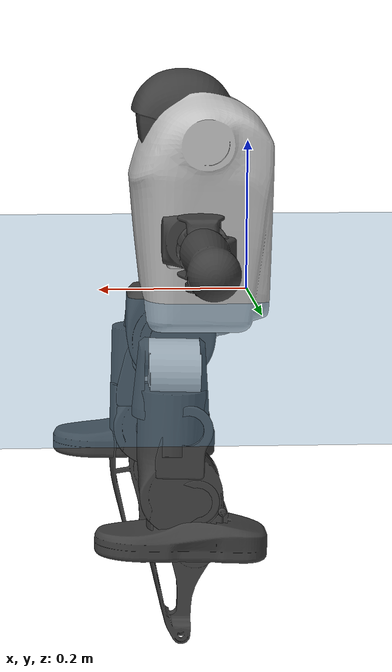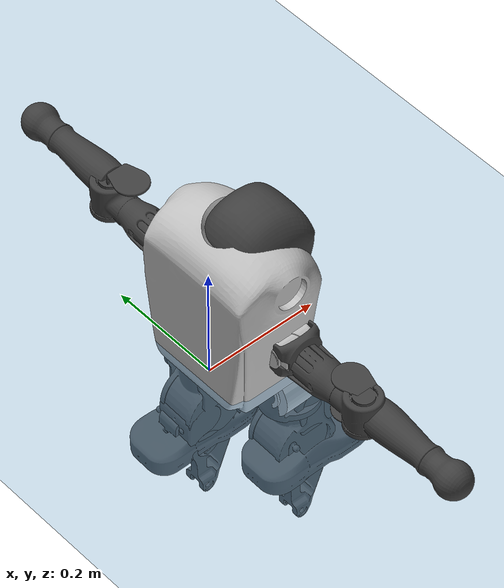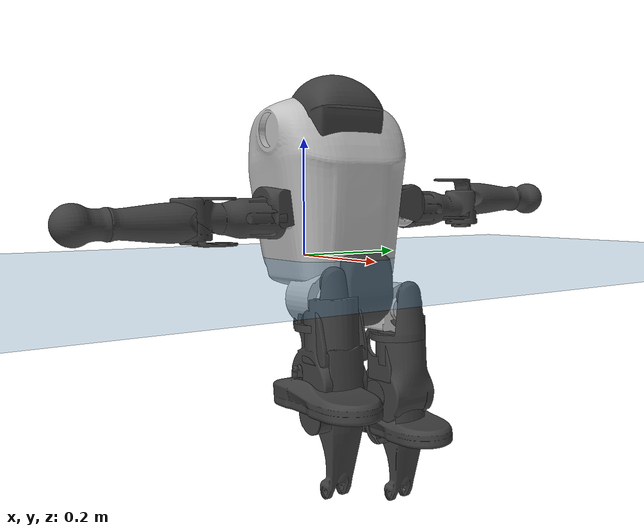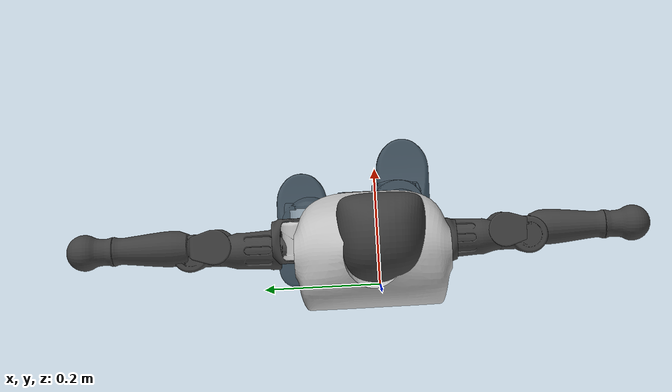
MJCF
<mujoco model="T1">
  <compiler angle="radian" assetdir="assets" balanceinertia="true" inertiafromgeom="false"/>

  <option timestep="0.005" density="1.2" viscosity="2e-05"/>

  <size nkey="1"/>

  <visual>
    <quality shadowsize="8192"/>
    <map shadowclip="0.5"/>
  </visual>

  <default>
    <default class="/">
      <joint armature="0.01" damping="0.01" frictionloss="0.1"/>
      <geom contype="0" conaffinity="0" group="1" solref="-1000 -80"/>
      <site size="0.01 0.005 0.005" group="5"/>
      <general forcelimited="true" biastype="affine" gainprm="25" biasprm="0 -25 -0.6"/>
      <default class="t1">
        <geom rgba="0.25 0.25 0.25 1"/>
        <default class="visual">
          <geom type="mesh" group="2"/>
        </default>
        <default class="collision">
          <geom group="3"/>
        </default>
        <default class="foot">
          <geom size="0.1115 0.05 0.015" type="box" condim="6" group="4" priority="1" solimp="0.015 1 0.015"/>
        </default>
        <default class="reward_collision_sphere">
          <geom group="5" rgba="1 0 0 1"/>
        </default>
      </default>
    </default>
  </default>

  <asset>
    <texture type="skybox" colorspace="auto" name="//unnamed_texture_0" builtin="gradient" rgb1="0.95 0.95 0.95" rgb2="0.95 0.95 0.95" width="100" height="600"/>
    <texture type="2d" colorspace="auto" name="texplane" builtin="checker" rgb1="0.345 0.575 0.748" rgb2="0.345 0.575 0.748" markrgb="1 1 1" width="512" height="512"/>
    <material name="MatPlane" class="/" texture="texplane" texuniform="true" texrepeat="2 2" specular="0.9"/>
    <mesh name="Trunk" class="/" file="Trunk.stl"/>
    <mesh name="H1" class="/" file="H1.stl"/>
    <mesh name="H2" class="/" file="H2.stl"/>
    <mesh name="AL1" class="/" file="AL1.stl"/>
    <mesh name="AL2" class="/" file="AL2.stl"/>
    <mesh name="AL3" class="/" file="AL3.stl"/>
    <mesh name="left_hand_link" class="/" file="left_hand_link.stl"/>
    <mesh name="AR1" class="/" file="AR1.stl"/>
    <mesh name="AR2" class="/" file="AR2.stl"/>
    <mesh name="AR3" class="/" file="AR3.stl"/>
    <mesh name="right_hand_link" class="/" file="right_hand_link.stl"/>
    <mesh name="Waist" class="/" file="Waist.stl"/>
    <mesh name="Hip_Pitch_Left" class="/" file="Hip_Pitch_Left.stl"/>
    <mesh name="Hip_Roll_Left" class="/" file="Hip_Roll_Left.stl"/>
    <mesh name="Hip_Yaw_Left" class="/" file="Hip_Yaw_Left.stl"/>
    <mesh name="Shank_Left" class="/" file="Shank_Left.stl"/>
    <mesh name="Ankle_Cross_Left" class="/" file="Ankle_Cross_Left.stl"/>
    <mesh name="left_foot_link" class="/" file="left_foot_link.stl"/>
    <mesh name="Hip_Pitch_Right" class="/" file="Hip_Pitch_Right.stl"/>
    <mesh name="Hip_Roll_Right" class="/" file="Hip_Roll_Right.stl"/>
    <mesh name="Hip_Yaw_Right" class="/" file="Hip_Yaw_Right.stl"/>
    <mesh name="Shank_Right" class="/" file="Shank_Right.stl"/>
    <mesh name="Ankle_Cross_Right" class="/" file="Ankle_Cross_Right.stl"/>
    <mesh name="right_foot_link" class="/" file="right_foot_link.stl"/>
  </asset>

  <worldbody>
    <geom name="floor" class="/" size="100 100 0.125" type="plane" group="0" material="MatPlane"/>
    <light name="toplight_shadow" class="/" pos="0 0 5" dir="0.0990148 0.0990148 -0.990148" type="directional" ambient="0.04 0.04 0.04" diffuse="0.55 0.55 0.55" specular="0.12 0.12 0.12"/>
    <light name="toplight_fill" class="/" pos="0 0 5" dir="0.0990148 0.0990148 -0.990148" type="directional" castshadow="false" ambient="0.04 0.04 0.04" diffuse="0.3 0.3 0.3" specular="0.08 0.08 0.08"/>
    <body name="trunk" childclass="t1" pos="0.00765121 0.0136209 -0.011913" quat="0.999975 0.00479508 -0.00507659 0.000801001">
      <inertial pos="0.0703882 -0.0066769 0.0331559" quat="0.99996 2.95749e-06 -0.00899689 -7.82912e-06" mass="5.67785" diaginertia="0.230337 0.0138796 0.000307595"/>
      <joint name="//unnamed_joint_0" type="free" armature="0" damping="0" frictionloss="0"/>
      <geom name="//unnamed_geom_1" class="visual" rgba="0.76 0.76 0.76 1" mesh="Trunk"/>
      <geom name="//unnamed_geom_2" class="collision" size="0.0598035 0.079738 0.119607" pos="0.0770252 0 0.0462588" type="box"/>
      <geom name="//unnamed_geom_3" class="reward_collision_sphere" size="0.0916987" pos="0.0770252 0 0.038549"/>
      <geom name="//unnamed_geom_4" class="reward_collision_sphere" size="0.0119607" pos="0.0770252 0.0614461 0"/>
      <geom name="//unnamed_geom_5" class="reward_collision_sphere" size="0.0119607" pos="0.0770252 -0.0614461 0"/>
      <geom name="//unnamed_geom_6" class="reward_collision_sphere" size="0.0119607" pos="0.0770252 0.0773498 0.0693882"/>
      <geom name="//unnamed_geom_7" class="reward_collision_sphere" size="0.0119607" pos="0.0770252 -0.0773498 0.0693882"/>
      <site name="imu" pos="-0.0595737 0.0303171 -0.0290781" size="0.0079738"/>
      <camera name="track" pos="0 -1.44579 0" quat="0.707107 0.707107 0 0" mode="trackcom"/>
      <camera name="ego_camera" pos="0.156618 0 0.161906" quat="-0.5 -0.5 0.5 0.5"/>
      <body name="H1" pos="0.0661684 -0.0141948 0.105441" quat="1 0.000251 0.000123515 -0.000114155">
        <inertial pos="0.01188 -0.0089957 0.0101136" quat="0.750529 0.0183007 0.0773732 0.656038" mass="0.265902" diaginertia="0.000900401 4.25971e-05 1.44079e-06"/>
        <joint name="AAHead_yaw" pos="0 0 0" axis="-0.0105975 -0.0219021 0.999704" range="-1.40713 1.82096" armature="0.0135261" damping="0.0245772" frictionloss="0.0129222"/>
        <geom name="//unnamed_geom_8" class="visual" mesh="H1"/>
        <body name="H2" pos="0.0023965 0.000272541 0.0133777" quat="1 1.3453e-07 -1.00515e-06 -7.89243e-07">
          <inertial pos="0.00452547 0.00142696 0.0375712" quat="0.986528 0.134784 -0.047302 -0.079744" mass="0.388252" diaginertia="0.00921585 0.000400919 1.39533e-05"/>
          <joint name="Head_pitch" pos="0 0 0" axis="0.0037451 -0.999809 0.0191992" range="-1.17408 0.294431" armature="0.0146388" damping="0.00588582" frictionloss="0.103128"/>
          <geom name="//unnamed_geom_9" class="visual" mesh="H2"/>
          <geom name="//unnamed_geom_10" class="collision" size="0.0637904" pos="0.0128375 0 0.0424039"/>
          <geom name="//unnamed_geom_11" class="reward_collision_sphere" size="0.0717642" pos="0.0256751 0 0.038549"/>
        </body>
      </body>
      <body name="AL1" pos="0.0778039 0.0725408 0.0898665" quat="1 -1.27257e-05 0.000516786 -4.89554e-05">
        <inertial pos="0.00852919 0.0321013 -0.00549339" quat="0.525106 0.427718 -0.542206 0.497326" mass="0.28875" diaginertia="0.00479108 0.000230127 2.10959e-06"/>
        <joint name="Left_Shoulder_Pitch" pos="0 0 0" axis="0.00880421 0.998751 -0.0491785" stiffness="0.00752749" range="-3.32542 1.06091" armature="0.00812937" damping="0.00355369" frictionloss="0.0960436"/>
        <geom name="//unnamed_geom_12" class="visual" rgba="0.76 0.76 0.76 1" mesh="AL1"/>
        <body name="AL2" pos="0.00082532 0.0341068 0.00859816" quat="1 0.000264366 -5.56081e-05 -2.40608e-05">
          <inertial pos="0.00440669 0.0371839 0.00211758" quat="0.490973 0.510806 -0.487219 0.510529" mass="0.0857594" diaginertia="0.00151265 6.88056e-05 1.69913e-06"/>
          <joint name="Left_Shoulder_Roll" pos="0 0 0" axis="-0.999798 0.00688851 0.0188664" stiffness="0.0178255" range="-1.40774 1.53584" armature="0.0073357" damping="0.0187284" frictionloss="0.0929345"/>
          <geom name="//unnamed_geom_13" class="visual" mesh="AL2"/>
          <body name="AL3" pos="-0.0129775 0.0441749 -0.00913197" quat="0.999982 0.00251626 0.00420186 -0.00355338">
            <inertial pos="0.0153698 0.0594262 -0.000703861" quat="0.697532 0.716346 -0.0141123 -0.00991114" mass="0.437633" diaginertia="0.0394014 0.00296023 5.07301e-06"/>
            <joint name="Left_Elbow_Pitch" pos="0 0 0" axis="-0.00266286 -0.99992 -0.0123561" stiffness="0.0171506" range="-2.26607 2.24902" armature="0.011636" damping="0.00797653" frictionloss="0.0977624"/>
            <geom name="//unnamed_geom_14" class="visual" mesh="AL3"/>
            <geom name="//unnamed_geom_15" class="collision" size="0.0239214 0.0598035" pos="0 0.0361448 0" quat="0.707105 0.707108 0 0" type="cylinder"/>
            <geom name="//unnamed_geom_16" class="reward_collision_sphere" size="0.0287057"/>
            <body name="left_hand_link" pos="0.00933661 0.105788 0.0165525" quat="0.999974 -0.00707305 0.000684821 0.00102095">
              <inertial pos="0.000680308 0.0901516 -0.0109633" quat="0.703446 0.709185 0.0418227 0.0216956" mass="0.210161" diaginertia="0.0282051 0.00194666 2.53997e-06"/>
              <joint name="Left_Elbow_Yaw" pos="0 0 0" axis="-0.00138201 0.0191274 0.999816" range="-2.36192 0.14866" armature="0.00922731" damping="0" frictionloss="0.0819385"/>
              <geom name="//unnamed_geom_17" class="visual" mesh="left_hand_link"/>
              <geom name="//unnamed_geom_18" class="collision" size="0.0239214 0.0697707" pos="0 0.0939764 0" quat="0.707105 0.707108 0 0" type="cylinder"/>
              <geom name="//unnamed_geom_19" class="reward_collision_sphere" size="0.039869"/>
              <geom name="//unnamed_geom_20" class="reward_collision_sphere" size="0.0279083" pos="0 0.0795185 0"/>
              <geom name="//unnamed_geom_21" class="reward_collision_sphere" size="0.0279083" pos="0 0.155423 0"/>
            </body>
          </body>
        </body>
      </body>
      <body name="AR1" pos="0.0641236 -0.0613117 0.0934874" quat="0.999997 -0.00061679 0.00242654 -0.000691086">
        <inertial pos="-0.00168004 -0.0191048 -0.0152828" quat="0.499374 0.506045 -0.512205 0.481862" mass="0.298266" diaginertia="0.0053673 0.000340422 2.77616e-06"/>
        <joint name="Right_Shoulder_Pitch" pos="0 0 0" axis="0.012312 -0.997281 0.0726616" stiffness="0.00144232" range="-1.47231 3.35078" armature="0.00515152" damping="0" frictionloss="0.0303138"/>
        <geom name="//unnamed_geom_22" class="visual" rgba="0.76 0.76 0.76 1" mesh="AR1"/>
        <body name="AR2" pos="0.00129862 -0.024418 0.00126933" quat="0.999988 -0.0025455 0.00259023 0.00340942">
          <inertial pos="0.0148755 -0.0279179 0.0102042" quat="0.535574 0.449997 -0.512191 0.498321" mass="0.0602942" diaginertia="0.00110113 5.5033e-05 1.43515e-06"/>
          <joint name="Right_Shoulder_Roll" pos="0 0 0" axis="-0.998979 -0.0439252 -0.010543" stiffness="0.0322097" range="-1.75094 1.60244" armature="0.0132451" damping="0.00648715" frictionloss="0.0948742"/>
          <geom name="//unnamed_geom_23" class="visual" mesh="AR2"/>
          <body name="AR3" pos="0.00356266 -0.0301782 -0.0143975" quat="0.999979 0.00154539 -0.00371342 -0.00502953">
            <inertial pos="-0.0166083 -0.0641439 -0.0139004" quat="0.708304 0.705907 0.000293829 -0.000861254" mass="0.59158" diaginertia="0.0607904 0.00291456 6.58534e-06"/>
            <joint name="Right_Elbow_Pitch" pos="0 0 0" axis="-0.00129495 0.999999 0.000526186" stiffness="0.0441485" range="-2.17437 2.28022" armature="0.00853114" damping="0.0123279" frictionloss="0.0129949"/>
            <geom name="//unnamed_geom_24" class="visual" mesh="AR3"/>
            <geom name="//unnamed_geom_25" class="collision" size="0.0239214 0.0598035" pos="0 -0.0361448 0" quat="0.707105 0.707108 0 0" type="cylinder"/>
            <geom name="//unnamed_geom_26" class="reward_collision_sphere" size="0.0287057"/>
            <body name="right_hand_link" pos="0.0104103 -0.10809 -0.00400589" quat="1 -0.000141945 0.000178334 7.61253e-05">
              <inertial pos="0.00301359 -0.0852734 0.0053578" quat="0.706261 0.70793 -0.00515739 0.00223866" mass="0.154405" diaginertia="0.0227592 0.0012773 1.62696e-06"/>
              <joint name="Right_Elbow_Yaw" pos="0 0 0" axis="-0.0375127 0.0708246 0.996783" stiffness="0.00282058" range="0.126669 2.42902" armature="0.0117332" damping="0.0101743" frictionloss="0.0410668"/>
              <geom name="//unnamed_geom_27" class="visual" mesh="right_hand_link"/>
              <geom name="//unnamed_geom_28" class="collision" size="0.0239214 0.0697707" pos="0 -0.0939764 0" quat="0.707105 0.707108 0 0" type="cylinder"/>
              <geom name="//unnamed_geom_29" class="reward_collision_sphere" size="0.039869"/>
              <geom name="//unnamed_geom_30" class="reward_collision_sphere" size="0.0279083" pos="0 -0.0795185 0"/>
              <geom name="//unnamed_geom_31" class="reward_collision_sphere" size="0.0279083" pos="0 -0.155423 0"/>
            </body>
          </body>
        </body>
      </body>
      <body name="Waist" pos="0.0970009 0.00826004 -0.0474165" quat="0.99997 0.00342388 -0.00641023 -0.00254776">
        <inertial pos="0.0176922 -0.0119379 0.0144094" quat="0.988398 0.0537236 -0.136817 0.0382604" mass="1.66327" diaginertia="0.0200357 0.00121736 4.64754e-05"/>
        <joint name="Waist" pos="0 0 0" axis="0.0430248 0.0298371 0.998628" range="-1.55326 1.45905" armature="0.00792951" damping="0" frictionloss="0.0786047"/>
        <geom name="//unnamed_geom_32" class="visual" mesh="Waist"/>
        <body name="Hip_Pitch_Left" pos="-0.000147073 0.088735 -0.0135255" quat="0.999996 -0.000810196 -0.00120312 -0.00232206">
          <inertial pos="-0.0139428 -0.007093 -0.00706514" quat="0.965679 0.255597 -0.0461712 -0.00139458" mass="0.437584" diaginertia="0.00649347 0.000213008 1.00583e-05"/>
          <joint name="Left_Hip_Pitch" pos="0 0 0" axis="-0.0367938 0.998096 0.0495078" range="-1.95694 1.66667" armature="0.00412662" damping="0.00302493" frictionloss="0.0720932"/>
          <geom name="//unnamed_geom_33" class="visual" rgba="0.76 0.76 0.76 1" mesh="Hip_Pitch_Left"/>
          <body name="Hip_Roll_Left" pos="0.00542909 0.00857462 0.00131832" quat="1 3.21717e-05 2.6924e-05 7.93829e-06">
            <inertial pos="0.00245314 0.016084 -0.0126825" quat="0.708301 -0.00558459 -0.00747254 0.705849" mass="0.22336" diaginertia="0.00817959 0.000410092 3.98453e-06"/>
            <joint name="Left_Hip_Roll" pos="0 0 0" axis="-0.99908 0.00282832 0.0427924" range="-1.47296 0.0161629" armature="0.00594974" damping="0.0844516" frictionloss="0.0309007"/>
            <geom name="//unnamed_geom_34" class="visual" mesh="Hip_Roll_Left"/>
            <geom name="//unnamed_geom_35" class="reward_collision_sphere" size="0.0438559"/>
            <body name="Hip_Yaw_Left" pos="-0.00411435 0.00887053 -0.0395394" quat="0.999987 0.00321145 -0.00201396 -0.00329923">
              <inertial pos="-0.0139586 -0.00608298 -0.0228484" quat="0.706953 -0.0227715 -0.00254322 0.70689" mass="1.03016" diaginertia="0.1016 0.00594658 2.60079e-05"/>
              <joint name="Left_Hip_Yaw" pos="0 0 0" axis="-0.000668324 0.00275525 -0.999996" stiffness="0.0705174" range="-0.682415 1.07756" armature="0.008314" damping="0.00791002" frictionloss="0.0794838"/>
              <geom name="//unnamed_geom_36" class="visual" mesh="Hip_Yaw_Left"/>
              <geom name="//unnamed_geom_37" class="collision" size="0.039869 0.0637904" type="cylinder"/>
              <body name="Shank_Left" pos="-0.0204874 -0.000389452 -0.0470817" quat="1 -5.54102e-05 -0.000306494 3.32256e-05">
                <inertial pos="0.00454518 0.000486178 -0.0511957" quat="0.998547 -0.0247767 0.0133953 0.0459343" mass="0.830682" diaginertia="0.0976876 0.00765998 1.71609e-05"/>
                <joint name="Left_Knee_Pitch" pos="0 0 0" axis="0.0152974 0.999175 0.0376158" stiffness="0.00199494" range="-0.0179642 2.55314" armature="0.00291725" damping="0.0655369" frictionloss="0.0876907"/>
                <geom name="//unnamed_geom_38" class="visual" mesh="Shank_Left"/>
                <geom name="//unnamed_geom_39" class="collision" size="0.039869 0.0598035" pos="0 0 -0.0462588" type="cylinder"/>
                <geom name="//unnamed_geom_40" class="reward_collision_sphere" size="0.0518297"/>
                <body name="Ankle_Cross_Left" pos="-0.0125146 -0.000829006 -0.124924" quat="0.999989 0.00344874 -0.000487621 -0.00326301">
                  <inertial pos="0.0120257 -0.00439181 -0.0127796" quat="0.441472 0.556254 0.545863 0.444655" mass="0.0352879" diaginertia="0.000113325 5.08634e-06 8.69905e-08"/>
                  <joint name="Left_Ankle_Pitch" pos="0 0 0" axis="0.000936501 0.999999 0.00104802" stiffness="0.0641048" range="-0.878442 0.36046" armature="0.00112337" damping="0" frictionloss="0.0719511"/>
                  <geom name="//unnamed_geom_41" class="visual" mesh="Ankle_Cross_Left"/>
                  <body name="left_foot_link" pos="0.00678375 0.0112675 -0.0160658" quat="0.999964 0.00499283 3.20113e-05 0.00680858">
                    <inertial pos="0.0118937 0.00950308 0.000220197" quat="0.00892272 0.642628 -0.0652896 0.763339" mass="0.273509" diaginertia="0.00839651 0.000443213 1.37353e-05"/>
                    <joint name="Left_Ankle_Roll" pos="0 0 0" axis="-0.996591 -0.0561687 -0.060435" stiffness="0.000278648" range="-0.573766 0.224713" armature="0.00835913" damping="0.0659578" frictionloss="0.101114"/>
                    <geom name="//unnamed_geom_42" class="visual" mesh="left_foot_link"/>
                    <geom name="left_foot" class="foot" size="0.0576564 0.0572251 0.0119934" pos="0.0128375 0 -0.00578235"/>
                    <geom name="//unnamed_geom_44" class="reward_collision_sphere" size="0.0414637" pos="0.0128375 0 -0.00578235"/>
                    <geom name="//unnamed_geom_45" class="reward_collision_sphere" size="0.0239214" pos="0.121957 -0.0166266 -0.00578235"/>
                    <geom name="//unnamed_geom_46" class="reward_collision_sphere" size="0.0239214" pos="-0.0898628 -0.0166266 -0.00578235"/>
                    <site name="left_foot" class="foot" pos="0.0128375 0 -0.00578235" size="0.0079738"/>
                  </body>
                </body>
              </body>
            </body>
          </body>
        </body>
        <body name="Hip_Pitch_Right" pos="0.00515978 -0.0667627 0.0162714" quat="0.999999 0.000590247 0.00138369 0.000115199">
          <inertial pos="0.016029 0.0194685 -2.84591e-05" quat="0.970235 -0.24078 -0.00220807 -0.0257858" mass="0.509111" diaginertia="0.00528984 0.00024683 1.06436e-05"/>
          <joint name="Right_Hip_Pitch" pos="0 0 0" axis="-0.0096851 -0.999615 0.0259887" stiffness="0.0360402" range="-1.46025 2.01549" armature="0.0109596" damping="0.0789745" frictionloss="0.0487238"/>
          <geom name="//unnamed_geom_47" class="visual" rgba="0.76 0.76 0.76 1" mesh="Hip_Pitch_Right"/>
          <body name="Hip_Roll_Right" pos="0.0107526 -6.85962e-05 0.00847776" quat="0.999987 -0.00283688 -0.00359415 -0.00221065">
            <inertial pos="0.0128502 -0.00711368 -0.0320778" quat="0.692441 0.0569495 0.00917609 0.719165" mass="0.184317" diaginertia="0.00514483 0.000338679 4.68634e-06"/>
            <joint name="Right_Hip_Roll" pos="0 0 0" axis="-0.999595 0.0254133 -0.0127957" stiffness="0.0108444" range="-0.117177 1.52407" armature="0.00927101" damping="0" frictionloss="0.0348549"/>
            <geom name="//unnamed_geom_48" class="visual" mesh="Hip_Roll_Right"/>
            <geom name="//unnamed_geom_49" class="reward_collision_sphere" size="0.0438559"/>
            <body name="Hip_Yaw_Right" pos="0.0159604 0.00276254 -0.0244167" quat="1 -0.00041239 0.000224843 0.000513731">
              <inertial pos="-0.00539141 0.00549744 -0.0447221" quat="0.714277 -0.0260009 -0.0307035 0.698706" mass="1.16856" diaginertia="0.0746348 0.00555825 1.82055e-05"/>
              <joint name="Right_Hip_Yaw" pos="0 0 0" axis="-0.0134241 0.00527508 -0.999896" stiffness="0.0268533" range="-0.997185 0.993894" armature="0.00638524" damping="0" frictionloss="0.107539"/>
              <geom name="//unnamed_geom_50" class="visual" mesh="Hip_Yaw_Right"/>
              <geom name="//unnamed_geom_51" class="collision" size="0.039869 0.0637904" type="cylinder"/>
              <body name="Shank_Right" pos="-0.00441795 0.00197006 -0.0401054" quat="0.999994 0.00222843 0.00274572 0.000483498">
                <inertial pos="-0.00861727 0.0130306 -0.04766" quat="0.998277 -0.0249114 0.029312 -0.0442988" mass="0.768424" diaginertia="0.136671 0.00703736 2.01113e-05"/>
                <joint name="Right_Knee_Pitch" pos="0 0 0" axis="-0.00650286 -0.999972 -0.00361195" range="-2.05058 -0.0310575" armature="0.0102091" damping="0.00698154" frictionloss="0.0948012"/>
                <geom name="//unnamed_geom_52" class="visual" mesh="Shank_Right"/>
                <geom name="//unnamed_geom_53" class="collision" size="0.039869 0.0598035" pos="0 0 -0.0462588" type="cylinder"/>
                <geom name="//unnamed_geom_54" class="reward_collision_sphere" size="0.0518297"/>
                <body name="Ankle_Cross_Right" pos="0.00510657 -0.00526417 -0.100231" quat="1 -2.70301e-05 6.82271e-06 -0.000167242">
                  <inertial pos="-0.00455016 -0.00924384 -0.00421745" quat="0.444416 0.54988 0.548782 0.446055" mass="0.0408903" diaginertia="8.11862e-05 5.61799e-06 7.75456e-08"/>
                  <joint name="Right_Ankle_Pitch" pos="0 0 0" axis="-0.042772 -0.997529 0.055727" stiffness="0.0630024" range="-0.558386 1.11172" armature="0.00787489" damping="0" frictionloss="0.0798351"/>
                  <geom name="//unnamed_geom_55" class="visual" mesh="Ankle_Cross_Right"/>
                  <body name="right_foot_link" pos="-0.000106728 -0.0134351 -0.00882773" quat="1 -6.80757e-05 0.000214681 0.000224505">
                    <inertial pos="-0.000677104 -0.0134491 0.0127622" quat="0.0459922 0.624493 -0.0489847 0.778135" mass="0.465302" diaginertia="0.0109286 0.000570666 2.69615e-05"/>
                    <joint name="Right_Ankle_Roll" pos="0 0 0" axis="-0.999358 0.035381 0.00561218" range="-0.184044 0.138477" armature="0.0143581" damping="0.0883119" frictionloss="0.0337345"/>
                    <geom name="//unnamed_geom_56" class="visual" mesh="right_foot_link"/>
                    <geom name="right_foot" class="foot" size="0.0768834 0.059262 0.00587572" pos="0.0128375 0 -0.00578235"/>
                    <geom name="//unnamed_geom_58" class="reward_collision_sphere" size="0.0318952"/>
                    <geom name="//unnamed_geom_59" class="reward_collision_sphere" size="0.0239214" pos="0.0128375 0 -0.00578235"/>
                    <geom name="//unnamed_geom_60" class="reward_collision_sphere" size="0.0239214" pos="0.121957 0.0166266 -0.00578235"/>
                    <geom name="//unnamed_geom_61" class="reward_collision_sphere" size="0.0239214" pos="-0.0898628 0.0166266 -0.00578235"/>
                    <site name="right_foot" class="foot" pos="0.0128375 0 -0.00578235" size="0.0079738"/>
                  </body>
                </body>
              </body>
            </body>
          </body>
        </body>
      </body>
    </body>
  </worldbody>

  <contact>
    <pair class="/" geom1="floor" geom2="left_foot" name="//unnamed_contact_0"/>
    <pair class="/" geom1="floor" geom2="right_foot" name="//unnamed_contact_1"/>
  </contact>

  <actuator>
    <general name="AAHead_yaw" class="/" joint="AAHead_yaw" forcerange="-5.60544 5.60544" gainprm="24.2166" biasprm="0 -24.2166 -0.364689"/>
    <general name="Head_pitch" class="/" joint="Head_pitch" forcerange="-5.30962 5.30962" gainprm="24.2166" biasprm="0 -24.2166 -0.364689"/>
    <general name="Left_Shoulder_Pitch" class="/" joint="Left_Shoulder_Pitch" forcerange="-23.3346 23.3346" gainprm="24.2166" biasprm="0 -24.2166 -0.364689"/>
    <general name="Left_Shoulder_Roll" class="/" joint="Left_Shoulder_Roll" forcerange="-21.8651 21.8651" gainprm="24.2166" biasprm="0 -24.2166 -0.364689"/>
    <general name="Left_Elbow_Pitch" class="/" joint="Left_Elbow_Pitch" forcerange="-8.47026 8.47026" gainprm="24.2166" biasprm="0 -24.2166 -0.364689"/>
    <general name="Left_Elbow_Yaw" class="/" joint="Left_Elbow_Yaw" forcerange="-14.7294 14.7294" gainprm="24.2166" biasprm="0 -24.2166 -0.364689"/>
    <general name="Right_Shoulder_Pitch" class="/" joint="Right_Shoulder_Pitch" forcerange="-16.9743 16.9743" gainprm="24.2166" biasprm="0 -24.2166 -0.364689"/>
    <general name="Right_Shoulder_Roll" class="/" joint="Right_Shoulder_Roll" forcerange="-8.13753 8.13753" gainprm="24.2166" biasprm="0 -24.2166 -0.364689"/>
    <general name="Right_Elbow_Pitch" class="/" joint="Right_Elbow_Pitch" forcerange="-11.92 11.92" gainprm="24.2166" biasprm="0 -24.2166 -0.364689"/>
    <general name="Right_Elbow_Yaw" class="/" joint="Right_Elbow_Yaw" forcerange="-17.3963 17.3963" gainprm="24.2166" biasprm="0 -24.2166 -0.364689"/>
    <general name="Waist" class="/" joint="Waist" forcerange="-35.6302 35.6302" gainprm="24.2166" biasprm="0 -24.2166 -0.364689"/>
    <general name="Left_Hip_Pitch" class="/" joint="Left_Hip_Pitch" forcerange="-31.3568 31.3568" gainprm="24.2166" biasprm="0 -24.2166 -0.364689"/>
    <general name="Left_Hip_Roll" class="/" joint="Left_Hip_Roll" forcerange="-17.2318 17.2318" gainprm="24.2166" biasprm="0 -24.2166 -0.364689"/>
    <general name="Left_Hip_Yaw" class="/" joint="Left_Hip_Yaw" forcerange="-32.7866 32.7866" gainprm="24.2166" biasprm="0 -24.2166 -0.364689"/>
    <general name="Left_Knee_Pitch" class="/" joint="Left_Knee_Pitch" forcerange="-48.7147 48.7147" gainprm="24.2166" biasprm="0 -24.2166 -0.364689"/>
    <general name="Left_Ankle_Pitch" class="/" joint="Left_Ankle_Pitch" forcerange="-16.2931 16.2931" gainprm="24.2166" biasprm="0 -24.2166 -0.364689"/>
    <general name="Left_Ankle_Roll" class="/" joint="Left_Ankle_Roll" forcerange="-8.9239 8.9239" gainprm="24.2166" biasprm="0 -24.2166 -0.364689"/>
    <general name="Right_Hip_Pitch" class="/" joint="Right_Hip_Pitch" forcerange="-16.908 16.908" gainprm="24.2166" biasprm="0 -24.2166 -0.364689"/>
    <general name="Right_Hip_Roll" class="/" joint="Right_Hip_Roll" forcerange="-9.30759 9.30759" gainprm="24.2166" biasprm="0 -24.2166 -0.364689"/>
    <general name="Right_Hip_Yaw" class="/" joint="Right_Hip_Yaw" forcerange="-24.2033 24.2033" gainprm="24.2166" biasprm="0 -24.2166 -0.364689"/>
    <general name="Right_Knee_Pitch" class="/" joint="Right_Knee_Pitch" forcerange="-31.0363 31.0363" gainprm="24.2166" biasprm="0 -24.2166 -0.364689"/>
    <general name="Right_Ankle_Pitch" class="/" joint="Right_Ankle_Pitch" forcerange="-25.5329 25.5329" gainprm="24.2166" biasprm="0 -24.2166 -0.364689"/>
    <general name="Right_Ankle_Roll" class="/" joint="Right_Ankle_Roll" forcerange="-6.26005 6.26005" gainprm="24.2166" biasprm="0 -24.2166 -0.364689"/>
  </actuator>

  <sensor>
    <gyro site="imu" name="imu_angular_velocity"/>
    <velocimeter site="imu" name="imu_linear_velocity"/>
    <framelinvel objtype="site" objname="left_foot" name="left_foot_global_linear_velocity"/>
    <framelinvel objtype="site" objname="right_foot" name="right_foot_global_linear_velocity"/>
  </sensor>

  <keyframe>
    <key name="home" qpos="0 0 0.6385 1 0 0 0 0 0 0 1.4 0 -0.4 0 -1.4 0 0.4 0 -0.4 0 0 0.8 -0.4 0 0.4 0 0 -0.8 0.4 0"/>
  </keyframe>
</mujoco>
